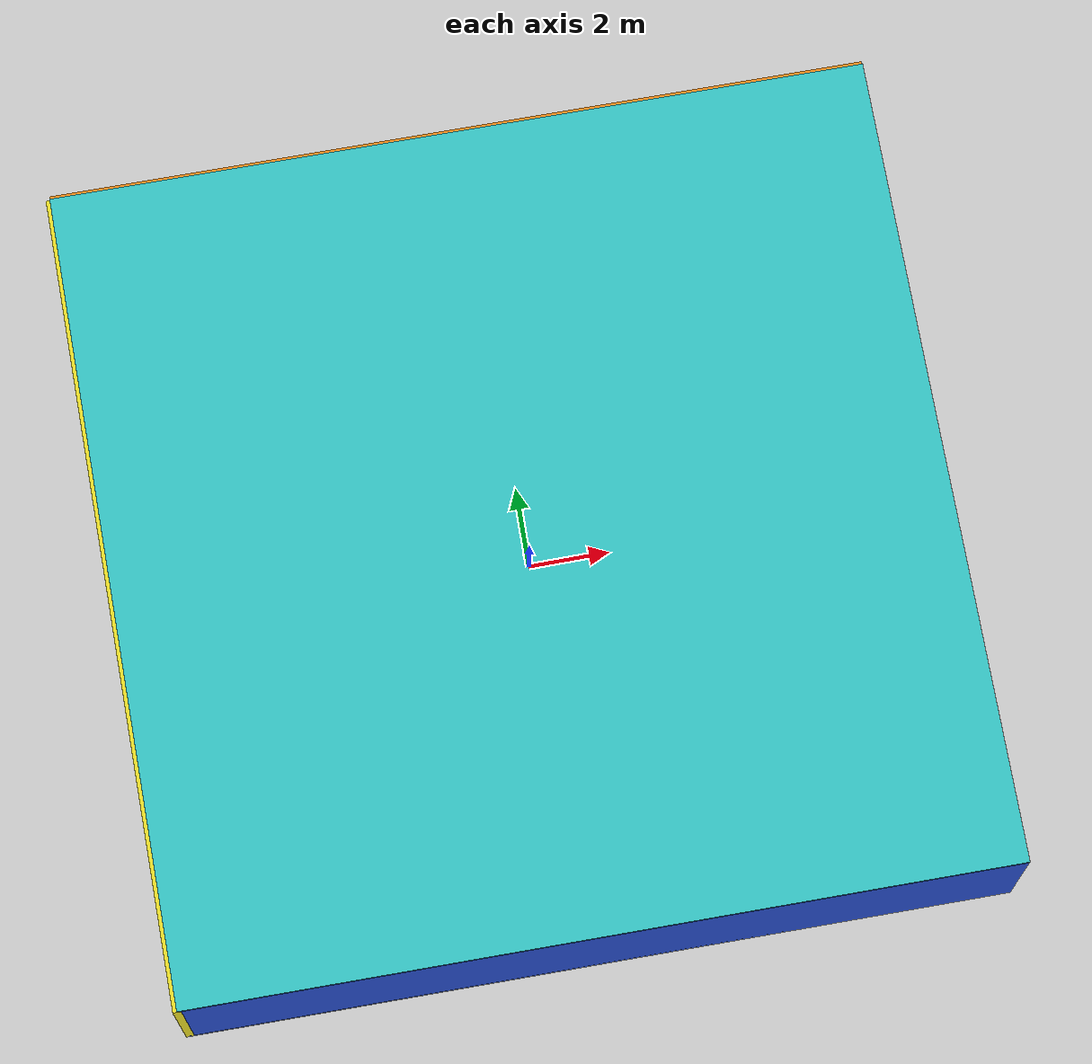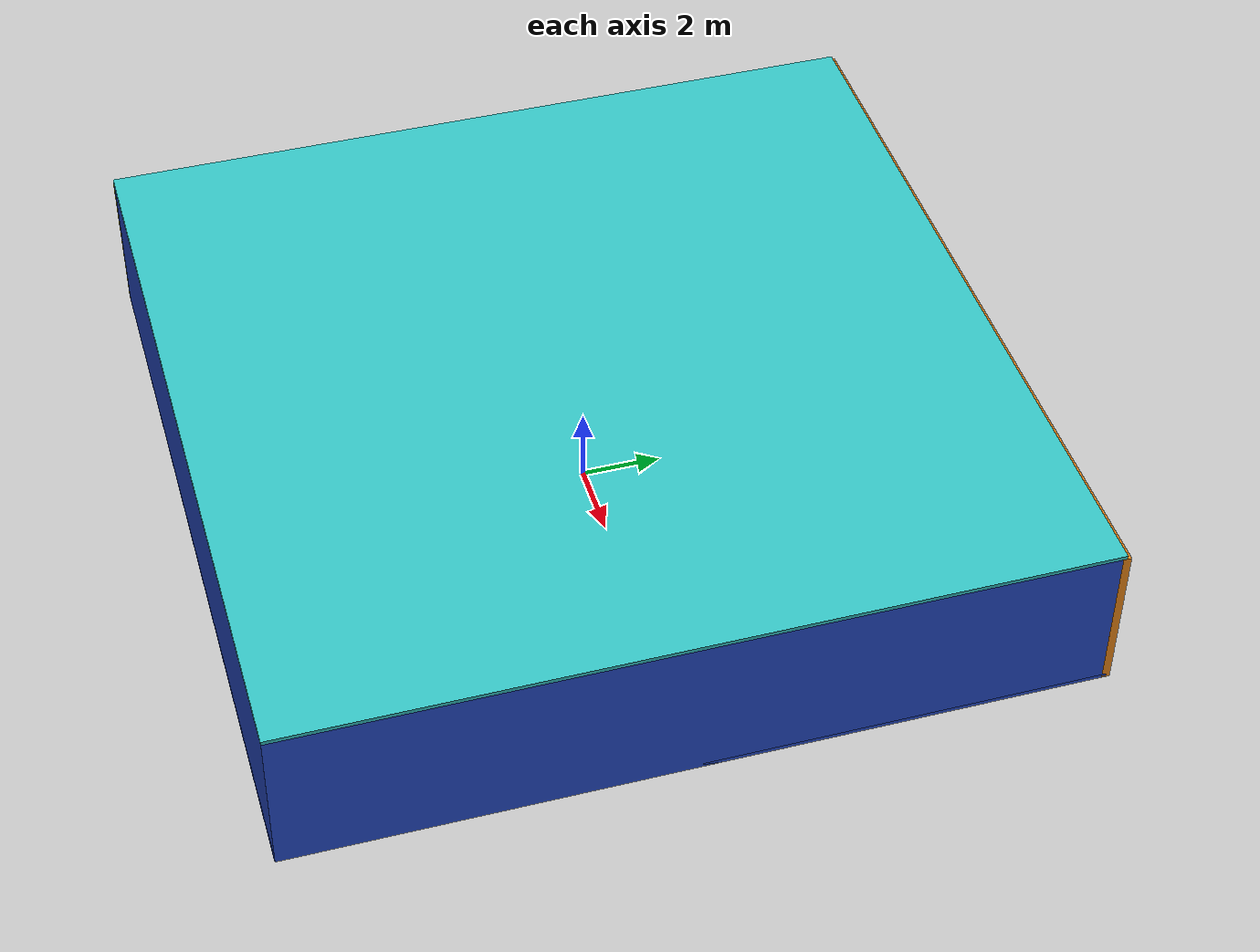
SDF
<sdf version="1.4">
 <world name="default">
  <physics type="ode">
   <max_step_size>0.001</max_step_size>
   <real_time_factor>1</real_time_factor>
   <real_time_update_rate>1000</real_time_update_rate>
   <gravity>0 0 -9.8</gravity>
  </physics>
  <scene><ambient>0.4 0.4 0.4 1</ambient><background>0.7 0.7 0.7 1</background><shadows>1</shadows></scene>
  <model name="Surrounding">
   <static>1</static>
   <link name="Ceiling">
    <collision name="Ceiling_Collision"><geometry><box><size>20 20 0.1</size></box></geometry></collision>
    <visual name="Ceiling_Visual">
     <geometry><box><size>20 20 0.1</size></box></geometry>
     <material>
      <script><uri>file://media/materials/scripts/gazebo.material</uri><name>Gazebo/TurquoiseGlow</name></script>
     </material>
    </visual>
    <pose>0 0 4.05 0 0 0</pose>
   </link>
   <link name="Wall_South">
    <collision name="Wall_South_Collision">
     <geometry><box><size>20 0 4</size></box></geometry>
     <pose>0 0 2 0 -0 0</pose>
    </collision>
    <visual name="Wall_South_Visual">
     <pose>0 0 2 0 -0 0</pose>
     <geometry><box><size>20 0 4</size></box></geometry>
     <material>
      <script><uri>file://media/materials/scripts/gazebo.material</uri><name>Gazebo/BlueLaser</name></script>
     </material>
    </visual>
    <velocity_decay><linear>0</linear><angular>0</angular></velocity_decay>
    <pose>0 -10 0 0 -0 0</pose>
   </link>
   <link name="Wall_East">
    <collision name="Wall_21_Collision">
     <geometry><box><size>20 0 4</size></box></geometry>
     <pose>0 0 2 0 -0 0</pose>
    </collision>
    <visual name="Wall_21_Visual">
     <pose>0 0 2 0 -0 0</pose>
     <geometry><box><size>20 0 4</size></box></geometry>
     <material>
      <script><uri>file://media/materials/scripts/gazebo.material</uri><name>Gazebo/BlueGlow</name></script>
     </material>
    </visual>
    <velocity_decay><linear>0</linear><angular>0</angular></velocity_decay>
    <pose>10 0 0 0 -0 1.5708</pose>
   </link>
   <link name="Wall_North">
    <collision name="Wall_22_Collision">
     <geometry><box><size>20 0.2 4</size></box></geometry>
     <pose>0 0 2 0 -0 0</pose>
    </collision>
    <visual name="Wall_22_Visual">
     <pose>0 0 2 0 -0 0</pose>
     <geometry><box><size>20 0.2 4</size></box></geometry>
     <material>
      <script><uri>file://media/materials/scripts/gazebo.material</uri><name>Gazebo/Orange</name></script>
     </material>
    </visual>
    <velocity_decay><linear>0</linear><angular>0</angular></velocity_decay>
    <pose>0 10 0 0 -0 0</pose>
   </link>
   <link name="Wall_West">
    <collision name="Wall_23_Collision">
     <geometry><box><size>20 0.2 4</size></box></geometry>
     <pose>0 0 2 0 -0 0</pose>
    </collision>
    <visual name="Wall_23_Visual">
     <pose>0 0 2 0 -0 0</pose>
     <geometry><box><size>20 0.2 4</size></box></geometry>
     <material>
      <script><uri>file://media/materials/scripts/gazebo.material</uri><name>Gazebo/YellowGlow</name></script>
     </material>
    </visual>
    <velocity_decay><linear>0</linear><angular>0</angular></velocity_decay>
    <pose>-10 0 0 0 0 -1.5708</pose>
   </link>
   <link name="Ground_link">
    <collision name="collision">
     <pose>0 0 .05 0 -0 0</pose>
     <geometry><box><size>20 20 0.1</size></box></geometry>
    </collision>
    <visual name="visual">
     <pose>0 0 .05 0 -0 0</pose>
     <geometry><box><size>20 20 0.1</size></box></geometry>
     <material>
      <script><uri>file://media/materials/scripts/gazebo.material</uri><name>Gazebo/BlueLaser</name></script>
     </material>
    </visual>
   </link>
   <static>1</static>
  </model>
  <spherical_coordinates>
   <surface_model>EARTH_WGS84</surface_model>
   <latitude_deg>0</latitude_deg>
   <longitude_deg>0</longitude_deg>
   <elevation>0</elevation>
   <heading_deg>0</heading_deg>
  </spherical_coordinates>
  <light name="lightball_0" type="diffuse">
   <diffuse>0.8 0.8 0.8 1</diffuse>
   <specular>0.2 0.2 0.2 1</specular>
   <attenuation>
    <range>100</range>
    <constant>0.7</constant>
    <linear>0.01</linear>
    <quadratic>0.001</quadratic>
   </attenuation>
   <direction>-0.5 0.1 -0.9</direction>
   <pose>-2.19083284479 -1.53661875827 3.32830388916 0 0 0</pose>
  </light>
  <light name="lightball_1" type="diffuse">
   <diffuse>0.8 0.8 0.8 1</diffuse>
   <specular>0.2 0.2 0.2 1</specular>
   <attenuation>
    <range>100</range>
    <constant>0.7</constant>
    <linear>0.01</linear>
    <quadratic>0.001</quadratic>
   </attenuation>
   <direction>-0.5 0.1 -0.9</direction>
   <pose>9.08914067419 -1.46869753844 1.42147260308 0 0 0</pose>
  </light>
  <light name="lightball_2" type="diffuse">
   <diffuse>0.8 0.8 0.8 1</diffuse>
   <specular>0.2 0.2 0.2 1</specular>
   <attenuation>
    <range>100</range>
    <constant>0.7</constant>
    <linear>0.01</linear>
    <quadratic>0.001</quadratic>
   </attenuation>
   <direction>-0.5 0.1 -0.9</direction>
   <pose>5.43033404357 -0.794746846475 3.09150754488 0 0 0</pose>
  </light>
  <light name="lightball_3" type="diffuse">
   <diffuse>0.8 0.8 0.8 1</diffuse>
   <specular>0.2 0.2 0.2 1</specular>
   <attenuation>
    <range>100</range>
    <constant>0.7</constant>
    <linear>0.01</linear>
    <quadratic>0.001</quadratic>
   </attenuation>
   <direction>-0.5 0.1 -0.9</direction>
   <pose>3.12198996562 -3.42772419464 2.81284723777 0 0 0</pose>
  </light>
  <light name="lightball_4" type="diffuse">
   <diffuse>0.8 0.8 0.8 1</diffuse>
   <specular>0.2 0.2 0.2 1</specular>
   <attenuation>
    <range>100</range>
    <constant>0.7</constant>
    <linear>0.01</linear>
    <quadratic>0.001</quadratic>
   </attenuation>
   <direction>-0.5 0.1 -0.9</direction>
   <pose>-7.87578656454 -5.18149650521 3.10639487609 0 0 0</pose>
  </light>
  <light name="lightball_5" type="diffuse">
   <diffuse>0.8 0.8 0.8 1</diffuse>
   <specular>0.2 0.2 0.2 1</specular>
   <attenuation>
    <range>100</range>
    <constant>0.7</constant>
    <linear>0.01</linear>
    <quadratic>0.001</quadratic>
   </attenuation>
   <direction>-0.5 0.1 -0.9</direction>
   <pose>8.4695738235 -8.54660051931 0.630233535188 0 0 0</pose>
  </light>
  <light name="lightball_6" type="diffuse">
   <diffuse>0.8 0.8 0.8 1</diffuse>
   <specular>0.2 0.2 0.2 1</specular>
   <attenuation>
    <range>100</range>
    <constant>0.7</constant>
    <linear>0.01</linear>
    <quadratic>0.001</quadratic>
   </attenuation>
   <direction>-0.5 0.1 -0.9</direction>
   <pose>-6.71560960268 -0.473409018392 0.716875692688 0 0 0</pose>
  </light>
  <light name="lightball_7" type="diffuse">
   <diffuse>0.8 0.8 0.8 1</diffuse>
   <specular>0.2 0.2 0.2 1</specular>
   <attenuation>
    <range>100</range>
    <constant>0.7</constant>
    <linear>0.01</linear>
    <quadratic>0.001</quadratic>
   </attenuation>
   <direction>-0.5 0.1 -0.9</direction>
   <pose>-8.7072470897 5.92597812931 2.2932084265 0 0 0</pose>
  </light>
  <include><uri>model://cabinet</uri><pose>-0.70537041345 -3.90467332312 0 0 0 2.80899624085</pose></include>
  <include>
   <uri>model://textured_shapes</uri>
   <pose>-2.10380660765 4.67220351593 0 0 0 2.0001471755</pose>
  </include>
  <include>
   <uri>model://robocup_3Dsim_goal</uri>
   <pose>3.7535718356 -7.50148137837 0 0 0 3.00731905779</pose>
  </include>
  <include>
   <uri>model://construction_cone</uri>
   <pose>7.14778269728 -4.05716084589 0 0 0 1.68490760725</pose>
  </include>
 </world>
</sdf>

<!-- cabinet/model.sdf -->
<sdf version="1.5">
  <model name="cabinet">
    <static>true</static>
    <link name="cabinet_bottom_plate">
      <inertial>
        <pose>0 0 -1 0 0 0</pose>
        <inertia>
          <ixx>2.050000</ixx>
          <ixy>0</ixy>
          <ixz>0</ixz>
          <iyy>2.050000</iyy>
          <iyz>0</iyz>
          <izz>2.050000</izz>
        </inertia>
        <mass>25.000000</mass>
      </inertial>
      <collision name="cabinet_bottom_plate_geom">
        <pose>0 0 0.010000 0 0 0</pose>
        <geometry>
          <box>
            <size>0.450000 0.450000 0.020000</size>
          </box>
        </geometry>
      </collision>
      <visual name="cabinet_bottom_plate_geom_visual">
        <pose>0 0 0.010000 0 0 0</pose>
        <geometry>
          <box>
            <size>0.450000 0.450000 0.020000</size>
          </box>
        </geometry>
        <material>
          <script>
            <uri>model://media/materials/scripts/gazebo.material</uri>
            <name>Gazebo/Wood</name>
          </script>
        </material>
      </visual>
      <collision name="cabinet_bottom_plate_geom_cabinet_back_plate">
        <pose>0.235000 0 0.510000 0 0 0</pose>
        <geometry>
          <box>
            <size>0.020000 0.450000 1.020000</size>
          </box>
        </geometry>
      </collision>
      <visual name="cabinet_bottom_plate_geom_cabinet_back_plate_visual">
        <pose>0.235000 0 0.510000 0 0 0</pose>
        <geometry>
          <box>
            <size>0.020000 0.450000 1.020000</size>
          </box>
        </geometry>
        <material>
          <script>
            <uri>model://media/materials/scripts/gazebo.material</uri>
            <name>Gazebo/Wood</name>
          </script>
        </material>
      </visual>
      <collision name="cabinet_bottom_plate_geom_cabinet_left_plate">
        <pose>0 0.235000 0.510000 0 0 0</pose>
        <geometry>
          <box>
            <size>0.450000 0.020000 1.020000</size>
          </box>
        </geometry>
      </collision>
      <visual name="cabinet_bottom_plate_geom_cabinet_left_plate_visual">
        <pose>0 0.235000 0.510000 0 0 0</pose>
        <geometry>
          <box>
            <size>0.450000 0.020000 1.020000</size>
          </box>
        </geometry>
        <material>
          <script>
            <uri>model://media/materials/scripts/gazebo.material</uri>
            <name>Gazebo/Wood</name>
          </script>
        </material>
      </visual>
      <collision name="cabinet_bottom_plate_geom_cabinet_middle_plate">
        <pose>0 0 0.510000 0 0 0</pose>
        <geometry>
          <box>
            <size>0.450000 0.450000 0.020000</size>
          </box>
        </geometry>
      </collision>
      <visual name="cabinet_bottom_plate_geom_cabinet_middle_plate_visual">
        <pose>0 0 0.510000 0 0 0</pose>
        <geometry>
          <box>
            <size>0.450000 0.450000 0.020000</size>
          </box>
        </geometry>
        <material>
          <script>
            <uri>model://media/materials/scripts/gazebo.material</uri>
            <name>Gazebo/Wood</name>
          </script>
        </material>
      </visual>
      <collision name="cabinet_bottom_plate_geom_cabinet_right_plate">
        <pose>0 -0.235000 0.510000 0 0 0</pose>
        <geometry>
          <box>
            <size>0.450000 0.020000 1.020000</size>
          </box>
        </geometry>
      </collision>
      <visual name="cabinet_bottom_plate_geom_cabinet_right_plate_visual">
        <pose>0 -0.235000 0.510000 0 0 0</pose>
        <geometry>
          <box>
            <size>0.450000 0.020000 1.020000</size>
          </box>
        </geometry>
        <material>
          <script>
            <uri>model://media/materials/scripts/gazebo.material</uri>
            <name>Gazebo/Wood</name>
          </script>
        </material>
      </visual>
      <collision name="cabinet_bottom_plate_geom_cabinet_top_plate">
        <pose>0 0 1.010000 0 0 0</pose>
        <geometry>
          <box>
            <size>0.450000 0.450000 0.020000</size>
          </box>
        </geometry>
      </collision>
      <visual name="cabinet_bottom_plate_geom_cabinet_top_plate_visual">
        <pose>0 0 1.010000 0 0 0</pose>
        <geometry>
          <box>
            <size>0.450000 0.450000 0.020000</size>
          </box>
        </geometry>
        <material>
          <script>
            <uri>model://media/materials/scripts/gazebo.material</uri>
            <name>Gazebo/Wood</name>
          </script>
        </material>
      </visual>
    </link>
  </model>
</sdf>

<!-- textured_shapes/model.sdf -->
<sdf version="1.6">
  <model name="textured_shapes">
    <pose>0 0 0.5 0 0 0</pose>
    <link name="box">
      <pose>0 -1.5 0 0 0 0</pose>
      <collision name="collision">
        <geometry>
          <box>
            <size>1 1 1</size>
          </box>
        </geometry>
      </collision>
      <visual name="visual">
        <geometry>
          <box>
            <size>1 1 1</size>
          </box>
        </geometry>
        <material>
          <script>
            <uri>model://../model_source/models/textured_shapes/materials/scripts</uri>
            <uri>model://../model_source/models/textured_shapes/materials/textures</uri>
            <name>TexturedShape/Squares</name>
          </script>
        </material>
      </visual>
    </link>
    <link name="sphere">
      <collision name="collision">
        <geometry>
          <sphere>
            <radius>0.5</radius>
          </sphere>
        </geometry>
      </collision>
      <visual name="visual">
        <geometry>
          <sphere>
            <radius>0.5</radius>
          </sphere>
        </geometry>
        <material>
          <script>
            <uri>model://../model_source/models/textured_shapes/materials/scripts</uri>
            <uri>model://../model_source/models/textured_shapes/materials/textures</uri>
            <name>TexturedShape/Squares</name>
          </script>
        </material>
      </visual>
    </link>
    <link name="cylinder">
      <pose>0 1.5 0 0 0 0</pose>
      <collision name="collision">
        <geometry>
          <cylinder>
            <radius>0.5</radius>
            <length>1</length>
          </cylinder>
        </geometry>
      </collision>
      <visual name="visual">
        <geometry>
          <cylinder>
            <radius>0.5</radius>
            <length>1</length>
          </cylinder>
        </geometry>
        <material>
          <script>
            <uri>model://../model_source/models/textured_shapes/materials/scripts</uri>
            <uri>model://../model_source/models/textured_shapes/materials/textures</uri>
            <name>TexturedShape/Squares</name>
          </script>
        </material>
      </visual>
    </link>
  </model>
</sdf>

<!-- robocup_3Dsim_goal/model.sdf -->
<sdf version="1.5">
  <model name="robocup_3d_goal">
    <static>true</static>
    <link name="left_post">
      <pose>0 1.05 0.45 0 0 0</pose>
      <collision name="collision">
        <geometry>
          <cylinder>
            <radius>0.05</radius>
            <length>0.9</length>
          </cylinder>
        </geometry>
      </collision>
      <visual name="visual">
        <geometry>
          <cylinder>
            <radius>0.05</radius>
            <length>0.9</length>
          </cylinder>
        </geometry>
        <material>
          <script>
            <uri>file://media/materials/scripts/gazebo.material</uri>
            <name>Gazebo/ZincYellow</name>
          </script>
        </material>
      </visual>
    </link>
    <link name="left_support_horiz_lower">
      <pose>0.30 1.05 0.01 0 0 0</pose>
      <collision name="collision">
        <geometry>
          <box>
            <size>0.50 0.02 0.02</size>
          </box>
        </geometry>
      </collision>
      <visual name="visual">
        <geometry>
          <box>
            <size>0.50 0.02 0.02</size>
          </box>
        </geometry>
        <material>
          <script>
            <uri>file://media/materials/scripts/gazebo.material</uri>
            <name>Gazebo/White</name>
          </script>
        </material>
      </visual>
    </link>
    <link name="left_support_horiz_upper">
      <pose>0.30 1.05 0.79 0 0 0</pose>
      <collision name="collision">
        <geometry>
          <box>
            <size>0.50 0.02 0.02</size>
          </box>
        </geometry>
      </collision>
      <visual name="visual">
        <geometry>
          <box>
            <size>0.50 0.02 0.02</size>
          </box>
        </geometry>
        <material>
          <script>
            <uri>file://media/materials/scripts/gazebo.material</uri>
            <name>Gazebo/White</name>
          </script>
        </material>
      </visual>
    </link>
    <link name="left_support_vertical">
      <pose>0.56 1.05 0.4 0 1.5708 0</pose>
      <collision name="collision">
        <geometry>
          <box>
            <size>0.80 0.02 0.02</size>
          </box>
        </geometry>
      </collision>
      <visual name="visual">
        <geometry>
          <box>
            <size>0.80 0.02 0.02</size>
          </box>
        </geometry>
        <material>
          <script>
            <uri>file://media/materials/scripts/gazebo.material</uri>
            <name>Gazebo/White</name>
          </script>
        </material>
      </visual>
    </link>
    <link name="right_support_horiz_lower">
      <pose>0.30 -1.05 0.01 0 0 0</pose>
      <collision name="collision">
        <geometry>
          <box>
            <size>0.50 0.02 0.02</size>
          </box>
        </geometry>
      </collision>
      <visual name="visual">
        <geometry>
          <box>
            <size>0.50 0.02 0.02</size>
          </box>
        </geometry>
        <material>
          <script>
            <uri>file://media/materials/scripts/gazebo.material</uri>
            <name>Gazebo/White</name>
          </script>
        </material>
      </visual>
    </link>
    <link name="right_support_horiz_upper">
      <pose>0.30 -1.05 0.79 0 0 0</pose>
      <collision name="collision">
        <geometry>
          <box>
            <size>0.50 0.02 0.02</size>
          </box>
        </geometry>
      </collision>
      <visual name="visual">
        <geometry>
          <box>
            <size>0.50 0.02 0.02</size>
          </box>
        </geometry>
        <material>
          <script>
            <uri>file://media/materials/scripts/gazebo.material</uri>
            <name>Gazebo/White</name>
          </script>
        </material>
      </visual>
    </link>
    <link name="right_support_vertical">
      <pose>0.56 -1.05 0.4 0 1.5708 0</pose>
      <collision name="collision">
        <geometry>
          <box>
            <size>0.80 0.02 0.02</size>
          </box>
        </geometry>
      </collision>
      <visual name="visual">
        <geometry>
          <box>
            <size>0.80 0.02 0.02</size>
          </box>
        </geometry>
        <material>
          <script>
            <uri>file://media/materials/scripts/gazebo.material</uri>
            <name>Gazebo/White</name>
          </script>
        </material>
      </visual>
    </link>
    <link name="center_support_horiz_lower">
      <pose>0.56 0 0.01 0 1.5708 0</pose>
      <collision name="collision">
        <geometry>
          <box>
            <size>0.02 2.08 0.02</size>
          </box>
        </geometry>
      </collision>
      <visual name="visual">
        <geometry>
          <box>
            <size>0.02 2.08 0.02</size>
          </box>
        </geometry>
        <material>
          <script>
            <uri>file://media/materials/scripts/gazebo.material</uri>
            <name>Gazebo/White</name>
          </script>
        </material>
      </visual>
    </link>
    <link name="center_support_horiz_upper">
      <pose>0.56 0 0.79 0 1.5708 0</pose>
      <collision name="collision">
        <geometry>
          <box>
            <size>0.02 2.08 0.02</size>
          </box>
        </geometry>
      </collision>
      <visual name="visual">
        <geometry>
          <box>
            <size>0.02 2.08 0.02</size>
          </box>
        </geometry>
        <material>
          <script>
            <uri>file://media/materials/scripts/gazebo.material</uri>
            <name>Gazebo/White</name>
          </script>
        </material>
      </visual>
    </link>
    <link name="right_post">
      <pose>0 -1.05 0.45 0 0 0</pose>
      <collision name="collision">
        <geometry>
          <cylinder>
            <radius>0.05</radius>
            <length>0.9</length>
          </cylinder>
        </geometry>
      </collision>
      <visual name="visual">
        <geometry>
          <cylinder>
            <radius>0.05</radius>
            <length>0.9</length>
          </cylinder>
        </geometry>
        <material>
          <script>
            <uri>file://media/materials/scripts/gazebo.material</uri>
            <name>Gazebo/ZincYellow</name>
          </script>
        </material>
      </visual>
    </link>
    <link name="crossbar">
      <pose>0 0 0.85 1.57 1.57 0</pose>
      <collision name="collision">
        <geometry>
          <cylinder>
            <radius>0.05</radius>
            <length>2.0</length>
          </cylinder>
        </geometry>
      </collision>
      <visual name="visual">
        <geometry>
          <cylinder>
            <radius>0.05</radius>
            <length>2.0</length>
          </cylinder>
        </geometry>
        <material>
          <script>
            <uri>file://media/materials/scripts/gazebo.material</uri>
            <name>Gazebo/ZincYellow</name>
          </script>
        </material>
      </visual>
    </link>
    <link name="center_net">
      <pose>0.56 0 0.40 0 0 0</pose>
      <collision name="collision">
        <geometry>
          <box>
            <size>0.01 2.1 0.80</size>
          </box>
        </geometry>
      </collision>
      <visual name="visual">
        <geometry>
          <box>
            <size>0.01 2.1 0.80</size>
          </box>
        </geometry>
        <material>
          <script>
            <uri>model://../model_source/models/robocup09_spl_field/materials/scripts/</uri>
            <uri>model://../model_source/models/robocup09_spl_field/materials/textures/</uri>
            <name>RoboCup/Net</name>
          </script>
        </material>
      </visual>
    </link>
    <link name="left_net">
      <pose>0.30 1.05 0.40 0 0 0</pose>
      <collision name="collision">
        <geometry>
          <box>
            <size>0.50 0.01 0.76</size>
          </box>
        </geometry>
      </collision>
      <visual name="visual">
        <geometry>
          <box>
            <size>0.50 0.01 0.76</size>
          </box>
        </geometry>
        <material>
          <script>
            <uri>model://../model_source/models/robocup09_spl_field/materials/scripts/</uri>
            <uri>model://../model_source/models/robocup09_spl_field/materials/textures/</uri>
            <name>RoboCup/Net</name>
          </script>
        </material>
      </visual>
    </link>
    <link name="right_net">
      <pose>0.30 -1.05 0.40 0 0 0</pose>
      <collision name="collision">
        <geometry>
          <box>
            <size>0.50 0.01 0.76</size>
          </box>
        </geometry>
      </collision>
      <visual name="visual">
        <geometry>
          <box>
            <size>0.50 0.01 0.76</size>
          </box>
        </geometry>
        <material>
          <script>
            <uri>model://../model_source/models/robocup09_spl_field/materials/scripts/</uri>
            <uri>model://../model_source/models/robocup09_spl_field/materials/textures/</uri>
            <name>RoboCup/Net</name>
          </script>
        </material>
      </visual>
    </link>
  </model>
</sdf>

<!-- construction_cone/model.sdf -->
<sdf version="1.5">
  <model name="Construction Cone">
    <link name="link">
      <collision name="collision">
        <geometry>
          <mesh>
            <scale>10 10 10</scale>
            <uri>file://isr-testbed/construction_cone/meshes/construction_cone.dae</uri>
          </mesh>
        </geometry>
      </collision>
      <visual name="visual">
        <geometry>
          <mesh>
            <scale>10 10 10</scale>
            <uri>file://isr-testbed/construction_cone/meshes/construction_cone.dae</uri>
          </mesh>
        </geometry>
      </visual>
    </link>
  </model>
</sdf>
